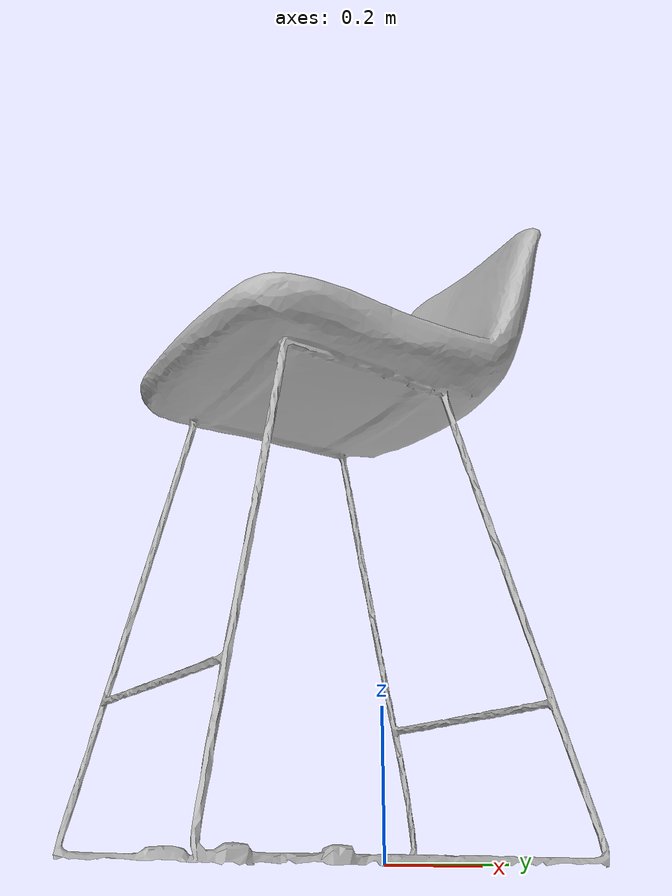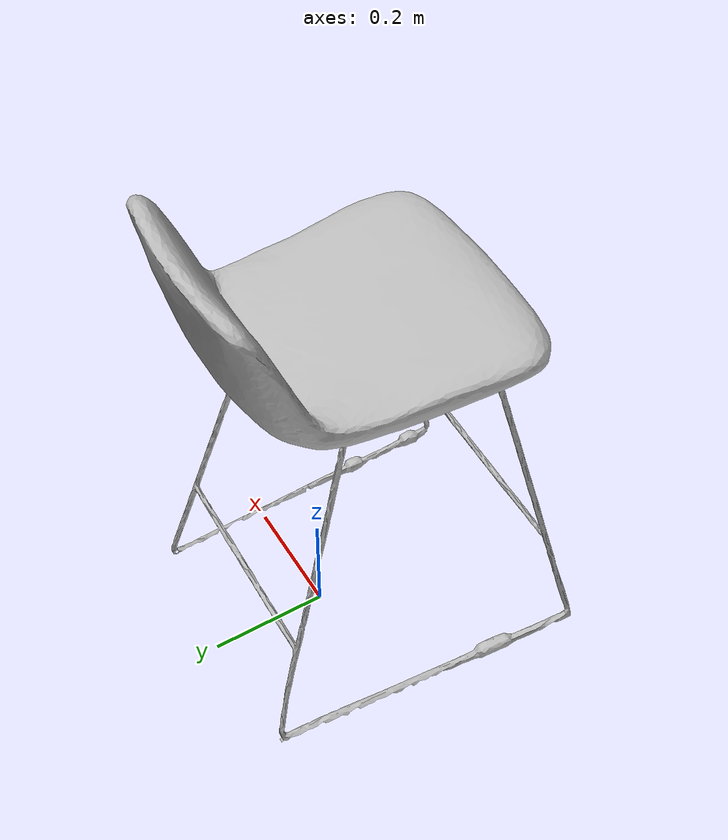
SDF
<?xml version="1.0" ?>
<sdf version="1.6">
  <model name="tall_chair">
    <static>false</static> <!-- Set to true if the chair is not supposed to move -->
    <link name="link">
      <pose>0 0 0 0 0 0</pose> <!-- Adjust pose as needed -->
      <inertial>
        <mass>5.0</mass> <!-- Adjust mass as needed -->
        <inertia>
          <ixx>0.1</ixx>
          <iyy>0.1</iyy>
          <izz>0.1</izz>
          <ixy>0.0</ixy>
          <ixz>0.0</ixz>
          <iyz>0.0</iyz>
        </inertia>
      </inertial>
      <collision name="collision">
        <geometry>
          <mesh>
            <uri>model://tall_chair/meshes/tall_chair.dae</uri>
          </mesh>
        </geometry>
      </collision>
      <visual name="visual">
        <geometry>
          <mesh>
            <uri>model://tall_chair/meshes/tall_chair.dae</uri>
          </mesh>
        </geometry>
      </visual>
    </link>
  </model>
</sdf>
